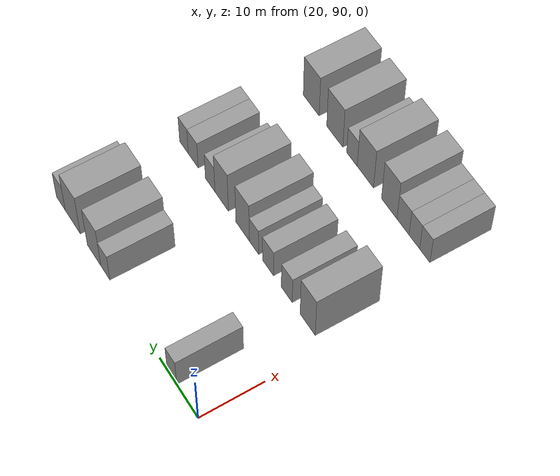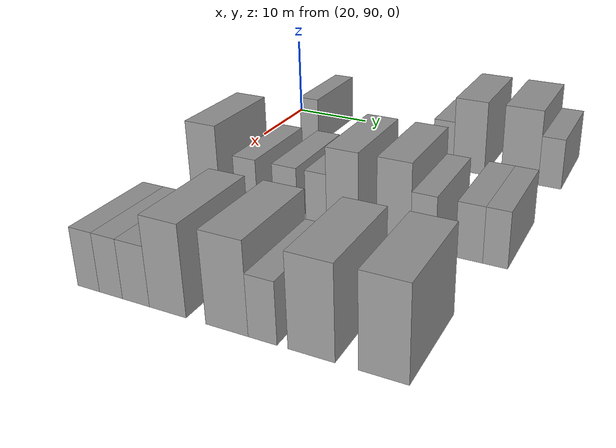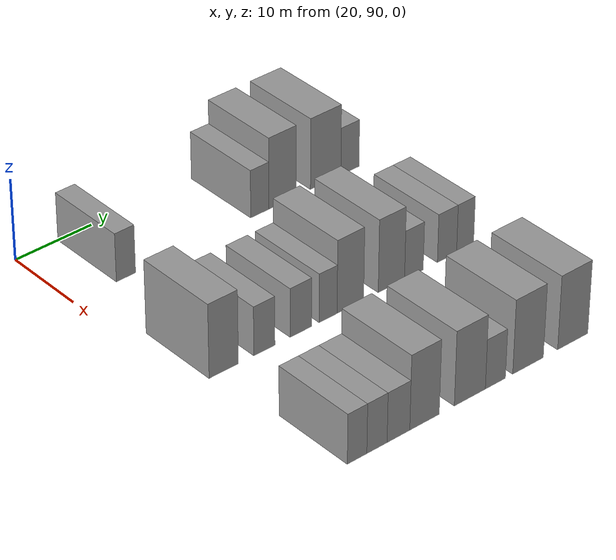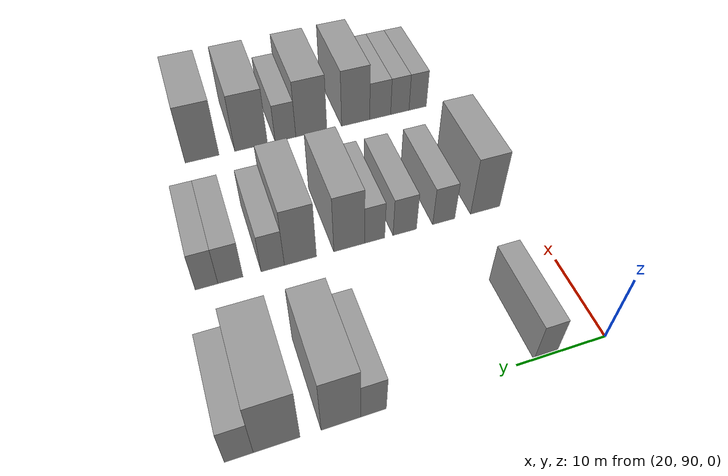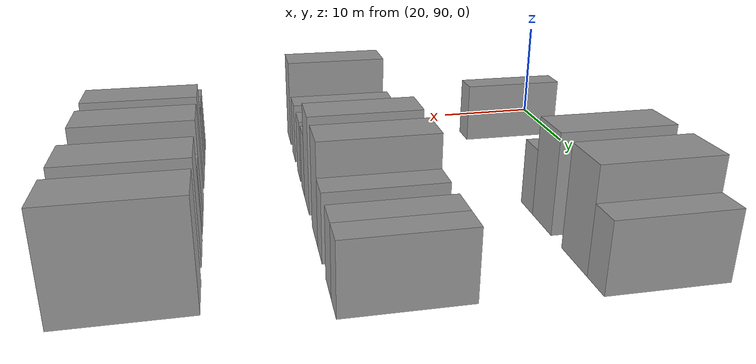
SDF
<sdf version="1.6">
 <world name="default">
  <model name="building_78">
   <static>1</static>
   <pose>25.0000 96.7889 0 0.000000 0.000000 0.000000</pose>
   <link name="link">
    <pose>0 0 3.00 0 0 0</pose>
    <collision name="collision"><geometry><box><size>10.0000 2.5252 6.0000</size></box></geometry></collision>
    <visual name="visual">
     <cast_shadows>0</cast_shadows>
     <geometry><box><size>10.0000 2.5252 6.0000</size></box></geometry>
     <material>
      <script>
       <uri>model://grey_wall/materials/scripts</uri>
       <uri>model://grey_wall/materials/textures</uri>
       <name>vrc/grey_wall</name>
      </script>
     </material>
    </visual>
   </link>
  </model>
  <model name="building_79">
   <static>1</static>
   <pose>25.0000 114.8546 0 0.000000 0.000000 0.000000</pose>
   <link name="link">
    <pose>0 0 3.00 0 0 0</pose>
    <collision name="collision"><geometry><box><size>10.0000 2.5354 6.0000</size></box></geometry></collision>
    <visual name="visual">
     <cast_shadows>0</cast_shadows>
     <geometry><box><size>10.0000 2.5354 6.0000</size></box></geometry>
     <material>
      <script>
       <uri>model://grey_wall/materials/scripts</uri>
       <uri>model://grey_wall/materials/textures</uri>
       <name>vrc/grey_wall</name>
      </script>
     </material>
    </visual>
   </link>
  </model>
  <model name="building_80">
   <static>1</static>
   <pose>25.0000 118.0476 0 0.000000 0.000000 0.000000</pose>
   <link name="link">
    <pose>0 0 4.50 0 0 0</pose>
    <collision name="collision"><geometry><box><size>10.0000 3.8505 9.0000</size></box></geometry></collision>
    <visual name="visual">
     <cast_shadows>0</cast_shadows>
     <geometry><box><size>10.0000 3.8505 9.0000</size></box></geometry>
     <material>
      <script>
       <uri>model://grey_wall/materials/scripts</uri>
       <uri>model://grey_wall/materials/textures</uri>
       <name>vrc/grey_wall</name>
      </script>
     </material>
    </visual>
   </link>
  </model>
  <model name="building_81">
   <static>1</static>
   <pose>25.0000 124.1542 0 0.000000 0.000000 0.000000</pose>
   <link name="link">
    <pose>0 0 4.50 0 0 0</pose>
    <collision name="collision"><geometry><box><size>10.0000 4.3627 9.0000</size></box></geometry></collision>
    <visual name="visual">
     <cast_shadows>0</cast_shadows>
     <geometry><box><size>10.0000 4.3627 9.0000</size></box></geometry>
     <material>
      <script>
       <uri>model://grey_wall/materials/scripts</uri>
       <uri>model://grey_wall/materials/textures</uri>
       <name>vrc/grey_wall</name>
      </script>
     </material>
    </visual>
   </link>
  </model>
  <model name="building_82">
   <static>1</static>
   <pose>25.0000 127.6540 0 0.000000 0.000000 0.000000</pose>
   <link name="link">
    <pose>0 0 3.00 0 0 0</pose>
    <collision name="collision"><geometry><box><size>10.0000 2.6370 6.0000</size></box></geometry></collision>
    <visual name="visual">
     <cast_shadows>0</cast_shadows>
     <geometry><box><size>10.0000 2.6370 6.0000</size></box></geometry>
     <material>
      <script>
       <uri>model://grey_wall/materials/scripts</uri>
       <uri>model://grey_wall/materials/textures</uri>
       <name>vrc/grey_wall</name>
      </script>
     </material>
    </visual>
   </link>
  </model>
  <model name="building_189">
   <static>1</static>
   <pose>44.0000 94.1889 0 0.000000 0.000000 0.000000</pose>
   <link name="link">
    <pose>0 0 4.50 0 0 0</pose>
    <collision name="collision"><geometry><box><size>10.0000 3.7561 9.0000</size></box></geometry></collision>
    <visual name="visual">
     <cast_shadows>0</cast_shadows>
     <geometry><box><size>10.0000 3.7561 9.0000</size></box></geometry>
     <material>
      <script>
       <uri>model://grey_wall/materials/scripts</uri>
       <uri>model://grey_wall/materials/textures</uri>
       <name>vrc/grey_wall</name>
      </script>
     </material>
    </visual>
   </link>
  </model>
  <model name="building_190">
   <static>1</static>
   <pose>44.0000 99.4490 0 0.000000 0.000000 0.000000</pose>
   <link name="link">
    <pose>0 0 3.00 0 0 0</pose>
    <collision name="collision"><geometry><box><size>10.0000 2.7641 6.0000</size></box></geometry></collision>
    <visual name="visual">
     <cast_shadows>0</cast_shadows>
     <geometry><box><size>10.0000 2.7641 6.0000</size></box></geometry>
     <material>
      <script>
       <uri>model://grey_wall/materials/scripts</uri>
       <uri>model://grey_wall/materials/textures</uri>
       <name>vrc/grey_wall</name>
      </script>
     </material>
    </visual>
   </link>
  </model>
  <model name="building_191">
   <static>1</static>
   <pose>44.0000 104.2594 0 0.000000 0.000000 0.000000</pose>
   <link name="link">
    <pose>0 0 3.00 0 0 0</pose>
    <collision name="collision"><geometry><box><size>10.0000 2.8566 6.0000</size></box></geometry></collision>
    <visual name="visual">
     <cast_shadows>0</cast_shadows>
     <geometry><box><size>10.0000 2.8566 6.0000</size></box></geometry>
     <material>
      <script>
       <uri>model://grey_wall/materials/scripts</uri>
       <uri>model://grey_wall/materials/textures</uri>
       <name>vrc/grey_wall</name>
      </script>
     </material>
    </visual>
   </link>
  </model>
  <model name="building_192">
   <static>1</static>
   <pose>44.0000 107.8938 0 0.000000 0.000000 0.000000</pose>
   <link name="link">
    <pose>0 0 3.00 0 0 0</pose>
    <collision name="collision"><geometry><box><size>10.0000 2.4122 6.0000</size></box></geometry></collision>
    <visual name="visual">
     <cast_shadows>0</cast_shadows>
     <geometry><box><size>10.0000 2.4122 6.0000</size></box></geometry>
     <material>
      <script>
       <uri>model://grey_wall/materials/scripts</uri>
       <uri>model://grey_wall/materials/textures</uri>
       <name>vrc/grey_wall</name>
      </script>
     </material>
    </visual>
   </link>
  </model>
  <model name="building_193">
   <static>1</static>
   <pose>44.0000 110.9068 0 0.000000 0.000000 0.000000</pose>
   <link name="link">
    <pose>0 0 4.50 0 0 0</pose>
    <collision name="collision"><geometry><box><size>10.0000 3.6139 9.0000</size></box></geometry></collision>
    <visual name="visual">
     <cast_shadows>0</cast_shadows>
     <geometry><box><size>10.0000 3.6139 9.0000</size></box></geometry>
     <material>
      <script>
       <uri>model://grey_wall/materials/scripts</uri>
       <uri>model://grey_wall/materials/textures</uri>
       <name>vrc/grey_wall</name>
      </script>
     </material>
    </visual>
   </link>
  </model>
  <model name="building_194">
   <static>1</static>
   <pose>44.0000 116.5399 0 0.000000 0.000000 0.000000</pose>
   <link name="link">
    <pose>0 0 4.50 0 0 0</pose>
    <collision name="collision"><geometry><box><size>10.0000 3.6522 9.0000</size></box></geometry></collision>
    <visual name="visual">
     <cast_shadows>0</cast_shadows>
     <geometry><box><size>10.0000 3.6522 9.0000</size></box></geometry>
     <material>
      <script>
       <uri>model://grey_wall/materials/scripts</uri>
       <uri>model://grey_wall/materials/textures</uri>
       <name>vrc/grey_wall</name>
      </script>
     </material>
    </visual>
   </link>
  </model>
  <model name="building_195">
   <static>1</static>
   <pose>44.0000 119.6720 0 0.000000 0.000000 0.000000</pose>
   <link name="link">
    <pose>0 0 3.00 0 0 0</pose>
    <collision name="collision"><geometry><box><size>10.0000 2.6119 6.0000</size></box></geometry></collision>
    <visual name="visual">
     <cast_shadows>0</cast_shadows>
     <geometry><box><size>10.0000 2.6119 6.0000</size></box></geometry>
     <material>
      <script>
       <uri>model://grey_wall/materials/scripts</uri>
       <uri>model://grey_wall/materials/textures</uri>
       <name>vrc/grey_wall</name>
      </script>
     </material>
    </visual>
   </link>
  </model>
  <model name="building_196">
   <static>1</static>
   <pose>44.0000 124.3446 0 0.000000 0.000000 0.000000</pose>
   <link name="link">
    <pose>0 0 3.00 0 0 0</pose>
    <collision name="collision"><geometry><box><size>10.0000 2.7333 6.0000</size></box></geometry></collision>
    <visual name="visual">
     <cast_shadows>0</cast_shadows>
     <geometry><box><size>10.0000 2.7333 6.0000</size></box></geometry>
     <material>
      <script>
       <uri>model://grey_wall/materials/scripts</uri>
       <uri>model://grey_wall/materials/textures</uri>
       <name>vrc/grey_wall</name>
      </script>
     </material>
    </visual>
   </link>
  </model>
  <model name="building_197">
   <static>1</static>
   <pose>44.0000 126.9331 0 0.000000 0.000000 0.000000</pose>
   <link name="link">
    <pose>0 0 3.00 0 0 0</pose>
    <collision name="collision"><geometry><box><size>10.0000 2.4438 6.0000</size></box></geometry></collision>
    <visual name="visual">
     <cast_shadows>0</cast_shadows>
     <geometry><box><size>10.0000 2.4438 6.0000</size></box></geometry>
     <material>
      <script>
       <uri>model://grey_wall/materials/scripts</uri>
       <uri>model://grey_wall/materials/textures</uri>
       <name>vrc/grey_wall</name>
      </script>
     </material>
    </visual>
   </link>
  </model>
  <model name="building_306">
   <static>1</static>
   <pose>63.0000 94.9513 0 0.000000 0.000000 0.000000</pose>
   <link name="link">
    <pose>0 0 3.00 0 0 0</pose>
    <collision name="collision"><geometry><box><size>10.0000 2.4892 6.0000</size></box></geometry></collision>
    <visual name="visual">
     <cast_shadows>0</cast_shadows>
     <geometry><box><size>10.0000 2.4892 6.0000</size></box></geometry>
     <material>
      <script>
       <uri>model://grey_wall/materials/scripts</uri>
       <uri>model://grey_wall/materials/textures</uri>
       <name>vrc/grey_wall</name>
      </script>
     </material>
    </visual>
   </link>
  </model>
  <model name="building_307">
   <static>1</static>
   <pose>63.0000 97.4956 0 0.000000 0.000000 0.000000</pose>
   <link name="link">
    <pose>0 0 3.00 0 0 0</pose>
    <collision name="collision"><geometry><box><size>10.0000 2.5994 6.0000</size></box></geometry></collision>
    <visual name="visual">
     <cast_shadows>0</cast_shadows>
     <geometry><box><size>10.0000 2.5994 6.0000</size></box></geometry>
     <material>
      <script>
       <uri>model://grey_wall/materials/scripts</uri>
       <uri>model://grey_wall/materials/textures</uri>
       <name>vrc/grey_wall</name>
      </script>
     </material>
    </visual>
   </link>
  </model>
  <model name="building_308">
   <static>1</static>
   <pose>63.0000 100.2671 0 0.000000 0.000000 0.000000</pose>
   <link name="link">
    <pose>0 0 3.00 0 0 0</pose>
    <collision name="collision"><geometry><box><size>10.0000 2.9437 6.0000</size></box></geometry></collision>
    <visual name="visual">
     <cast_shadows>0</cast_shadows>
     <geometry><box><size>10.0000 2.9437 6.0000</size></box></geometry>
     <material>
      <script>
       <uri>model://grey_wall/materials/scripts</uri>
       <uri>model://grey_wall/materials/textures</uri>
       <name>vrc/grey_wall</name>
      </script>
     </material>
    </visual>
   </link>
  </model>
  <model name="building_309">
   <static>1</static>
   <pose>63.0000 103.6748 0 0.000000 0.000000 0.000000</pose>
   <link name="link">
    <pose>0 0 4.50 0 0 0</pose>
    <collision name="collision"><geometry><box><size>10.0000 3.8716 9.0000</size></box></geometry></collision>
    <visual name="visual">
     <cast_shadows>0</cast_shadows>
     <geometry><box><size>10.0000 3.8716 9.0000</size></box></geometry>
     <material>
      <script>
       <uri>model://grey_wall/materials/scripts</uri>
       <uri>model://grey_wall/materials/textures</uri>
       <name>vrc/grey_wall</name>
      </script>
     </material>
    </visual>
   </link>
  </model>
  <model name="building_310">
   <static>1</static>
   <pose>63.0000 109.6930 0 0.000000 0.000000 0.000000</pose>
   <link name="link">
    <pose>0 0 4.50 0 0 0</pose>
    <collision name="collision"><geometry><box><size>10.0000 4.1648 9.0000</size></box></geometry></collision>
    <visual name="visual">
     <cast_shadows>0</cast_shadows>
     <geometry><box><size>10.0000 4.1648 9.0000</size></box></geometry>
     <material>
      <script>
       <uri>model://grey_wall/materials/scripts</uri>
       <uri>model://grey_wall/materials/textures</uri>
       <name>vrc/grey_wall</name>
      </script>
     </material>
    </visual>
   </link>
  </model>
  <model name="building_311">
   <static>1</static>
   <pose>63.0000 113.1389 0 0.000000 0.000000 0.000000</pose>
   <link name="link">
    <pose>0 0 3.00 0 0 0</pose>
    <collision name="collision"><geometry><box><size>10.0000 2.7269 6.0000</size></box></geometry></collision>
    <visual name="visual">
     <cast_shadows>0</cast_shadows>
     <geometry><box><size>10.0000 2.7269 6.0000</size></box></geometry>
     <material>
      <script>
       <uri>model://grey_wall/materials/scripts</uri>
       <uri>model://grey_wall/materials/textures</uri>
       <name>vrc/grey_wall</name>
      </script>
     </material>
    </visual>
   </link>
  </model>
  <model name="building_312">
   <static>1</static>
   <pose>63.0000 117.6153 0 0.000000 0.000000 0.000000</pose>
   <link name="link">
    <pose>0 0 4.50 0 0 0</pose>
    <collision name="collision"><geometry><box><size>10.0000 4.2260 9.0000</size></box></geometry></collision>
    <visual name="visual">
     <cast_shadows>0</cast_shadows>
     <geometry><box><size>10.0000 4.2260 9.0000</size></box></geometry>
     <material>
      <script>
       <uri>model://grey_wall/materials/scripts</uri>
       <uri>model://grey_wall/materials/textures</uri>
       <name>vrc/grey_wall</name>
      </script>
     </material>
    </visual>
   </link>
  </model>
  <model name="building_313">
   <static>1</static>
   <pose>63.0000 123.8538 0 0.000000 0.000000 0.000000</pose>
   <link name="link">
    <pose>0 0 4.50 0 0 0</pose>
    <collision name="collision"><geometry><box><size>10.0000 4.2509 9.0000</size></box></geometry></collision>
    <visual name="visual">
     <cast_shadows>0</cast_shadows>
     <geometry><box><size>10.0000 4.2509 9.0000</size></box></geometry>
     <material>
      <script>
       <uri>model://grey_wall/materials/scripts</uri>
       <uri>model://grey_wall/materials/textures</uri>
       <name>vrc/grey_wall</name>
      </script>
     </material>
    </visual>
   </link>
  </model>
 </world>
</sdf>
